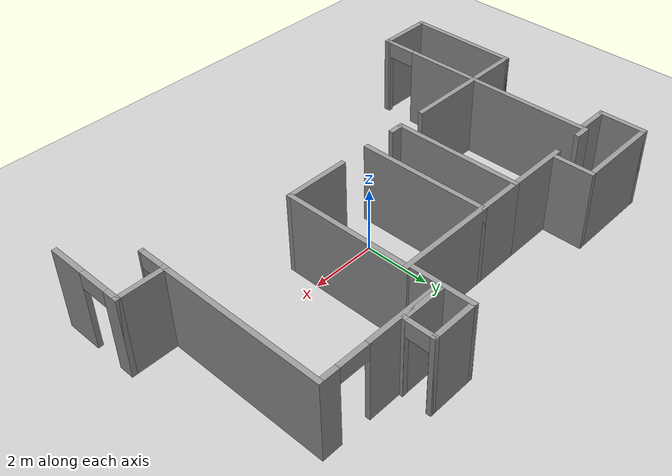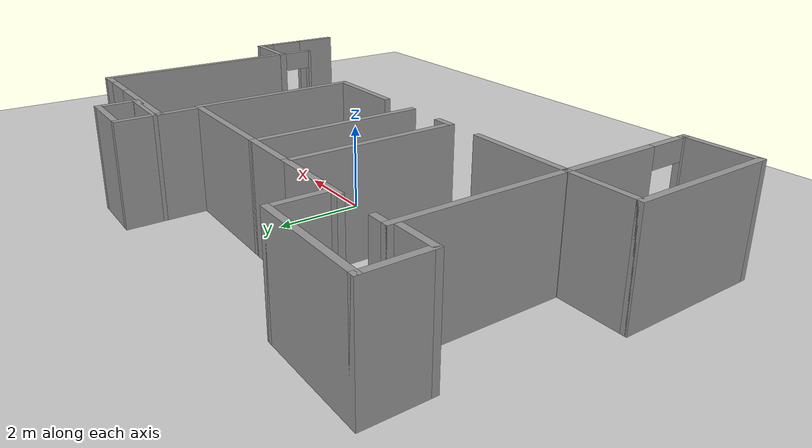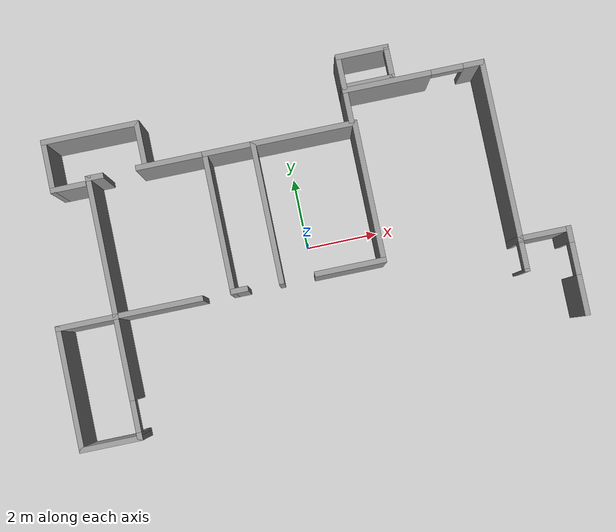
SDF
<sdf version="1.6">
 <world name="default">
  <model name="ground_plane">
   <static>1</static>
   <link name="link">
    <collision name="collision">
     <geometry><plane><normal>0 0 1</normal><size>100 100</size></plane></geometry>
     <surface><friction><ode><mu>100</mu><mu2>50</mu2></ode></friction></surface>
    </collision>
    <visual name="visual">
     <cast_shadows>0</cast_shadows>
     <geometry><plane><normal>0 0 1</normal><size>100 100</size></plane></geometry>
     <material>
      <script><uri>file://media/materials/scripts/gazebo.material</uri><name>Gazebo/Grey</name></script>
     </material>
    </visual>
   </link>
  </model>
  <model name="cma_escritorio">
   <pose>-1.79682 1.02121 0 0 -0 0</pose>
   <link name="Wall_11">
    <collision name="Wall_11_Collision">
     <geometry><box><size>2 0.15 2.5</size></box></geometry>
     <pose>0 0 1.25 0 -0 0</pose>
    </collision>
    <visual name="Wall_11_Visual">
     <pose>0 0 1.25 0 -0 0</pose>
     <geometry><box><size>2 0.15 2.5</size></box></geometry>
     <material>
      <script><uri>file://media/materials/scripts/gazebo.material</uri><name>Gazebo/Grey</name></script>
      <ambient>1 1 1 1</ambient>
     </material>
    </visual>
    <pose>-1.4 1.93 0 0 -0 3.14159</pose>
   </link>
   <link name="Wall_2">
    <collision name="Wall_2_Collision">
     <geometry><box><size>4 0.15 2.5</size></box></geometry>
     <pose>0 0 1.25 0 -0 0</pose>
    </collision>
    <visual name="Wall_2_Visual">
     <pose>0 0 1.25 0 -0 0</pose>
     <geometry><box><size>4 0.15 2.5</size></box></geometry>
     <material>
      <script><uri>file://media/materials/scripts/gazebo.material</uri><name>Gazebo/Grey</name></script>
      <ambient>1 1 1 1</ambient>
     </material>
    </visual>
    <pose>0.875 0.005 0 0 -0 1.5708</pose>
   </link>
   <link name="Wall_25">
    <collision name="Wall_25_Collision">
     <geometry><box><size>2.5 0.15 2.5</size></box></geometry>
     <pose>0 0 1.25 0 -0 0</pose>
    </collision>
    <visual name="Wall_25_Visual">
     <pose>0 0 1.25 0 -0 0</pose>
     <geometry><box><size>2.5 0.15 2.5</size></box></geometry>
     <material>
      <script><uri>file://media/materials/scripts/gazebo.material</uri><name>Gazebo/Grey</name></script>
      <ambient>1 1 1 1</ambient>
     </material>
    </visual>
    <pose>-2.55 -1.93 0 0 -0 3.14159</pose>
   </link>
   <link name="Wall_26">
    <collision name="Wall_26_Collision">
     <geometry><box><size>4 0.15 2.5</size></box></geometry>
     <pose>0 0 1.25 0 -0 0</pose>
    </collision>
    <visual name="Wall_26_Visual">
     <pose>0 0 1.25 0 -0 0</pose>
     <geometry><box><size>4 0.15 2.5</size></box></geometry>
     <material>
      <script><uri>file://media/materials/scripts/gazebo.material</uri><name>Gazebo/Grey</name></script>
      <ambient>1 1 1 1</ambient>
     </material>
    </visual>
    <pose>-3.725 -0.005 0 0 -0 1.5708</pose>
   </link>
   <link name="Wall_27">
    <collision name="Wall_27_Collision">
     <geometry><box><size>0.5 0.15 2.5</size></box></geometry>
     <pose>0 0 1.25 0 -0 0</pose>
    </collision>
    <visual name="Wall_27_Visual">
     <pose>0 0 1.25 0 -0 0</pose>
     <geometry><box><size>0.5 0.15 2.5</size></box></geometry>
     <material>
      <script><uri>file://media/materials/scripts/gazebo.material</uri><name>Gazebo/Grey</name></script>
      <ambient>1 1 1 1</ambient>
     </material>
    </visual>
    <pose>-3.55 1.92 0 0 -0 0</pose>
   </link>
   <link name="Wall_3">
    <collision name="Wall_3_Collision">
     <geometry><box><size>3 0.15 2.5</size></box></geometry>
     <pose>0 0 1.25 0 -0 0</pose>
    </collision>
    <visual name="Wall_3_Visual">
     <pose>0 0 1.25 0 -0 0</pose>
     <geometry><box><size>3 0.15 2.5</size></box></geometry>
     <material>
      <script><uri>file://media/materials/scripts/gazebo.material</uri><name>Gazebo/Grey</name></script>
      <ambient>1 1 1 1</ambient>
     </material>
    </visual>
    <pose>2.3 1.93 0 0 -0 0</pose>
   </link>
   <link name="Wall_4">
    <collision name="Wall_4_Collision">
     <geometry><box><size>4 0.15 2.5</size></box></geometry>
     <pose>0 0 1.25 0 -0 0</pose>
    </collision>
    <visual name="Wall_4_Visual">
     <pose>0 0 1.25 0 -0 0</pose>
     <geometry><box><size>4 0.15 2.5</size></box></geometry>
     <material>
      <script><uri>file://media/materials/scripts/gazebo.material</uri><name>Gazebo/Grey</name></script>
      <ambient>1 1 1 1</ambient>
     </material>
    </visual>
    <pose>3.725 0.005 0 0 0 -1.5708</pose>
   </link>
   <link name="Wall_5">
    <collision name="Wall_5_Collision">
     <geometry><box><size>2 0.15 2.5</size></box></geometry>
     <pose>0 0 1.25 0 -0 0</pose>
    </collision>
    <visual name="Wall_5_Visual">
     <pose>0 0 1.25 0 -0 0</pose>
     <geometry><box><size>2 0.15 2.5</size></box></geometry>
     <material>
      <script><uri>file://media/materials/scripts/gazebo.material</uri><name>Gazebo/Grey</name></script>
      <ambient>1 1 1 1</ambient>
     </material>
    </visual>
    <pose>2.8 -1.92 0 0 -0 3.14159</pose>
   </link>
   <link name="Wall_7">
    <collision name="Wall_7_Collision">
     <geometry><box><size>1.5 0.15 2.5</size></box></geometry>
     <pose>0 0 1.25 0 -0 0</pose>
    </collision>
    <visual name="Wall_7_Visual">
     <pose>0 0 1.25 0 -0 0</pose>
     <geometry><box><size>1.5 0.15 2.5</size></box></geometry>
     <material>
      <script><uri>file://media/materials/scripts/gazebo.material</uri><name>Gazebo/Grey</name></script>
      <ambient>1 1 1 1</ambient>
     </material>
    </visual>
    <pose>0.2 1.93 0 0 -0 3.14159</pose>
   </link>
   <link name="Wall_8">
    <collision name="Wall_8_Collision">
     <geometry><box><size>4 0.15 2.5</size></box></geometry>
     <pose>0 0 1.25 0 -0 0</pose>
    </collision>
    <visual name="Wall_8_Visual">
     <pose>0 0 1.25 0 -0 0</pose>
     <geometry><box><size>4 0.15 2.5</size></box></geometry>
     <material>
      <script><uri>file://media/materials/scripts/gazebo.material</uri><name>Gazebo/Grey</name></script>
      <ambient>1 1 1 1</ambient>
     </material>
    </visual>
    <pose>-0.475 0.005 0 0 0 -1.5708</pose>
   </link>
   <link name="Wall_9">
    <collision name="Wall_9_Collision">
     <geometry><box><size>0.5 0.15 2.5</size></box></geometry>
     <pose>0 0 1.25 0 -0 0</pose>
    </collision>
    <visual name="Wall_9_Visual">
     <pose>0 0 1.25 0 -0 0</pose>
     <geometry><box><size>0.5 0.15 2.5</size></box></geometry>
     <material>
      <script><uri>file://media/materials/scripts/gazebo.material</uri><name>Gazebo/Grey</name></script>
      <ambient>1 1 1 1</ambient>
     </material>
    </visual>
    <pose>-0.3 -1.92 0 0 -0 0</pose>
   </link>
   <static>1</static>
  </model>
  <model name="cma_banheiro">
   <pose>-5.22928 3.4871 0 0 -0 0</pose>
   <link name="Wall_0">
    <collision name="Wall_0_Collision">
     <geometry><box><size>1 0.15 2.5</size></box></geometry>
     <pose>0 0 1.25 0 -0 0</pose>
    </collision>
    <visual name="Wall_0_Visual">
     <pose>0 0 1.25 0 -0 0</pose>
     <geometry><box><size>1 0.15 2.5</size></box></geometry>
     <material>
      <script><uri>file://media/materials/scripts/gazebo.material</uri><name>Gazebo/Grey</name></script>
      <ambient>1 1 1 1</ambient>
     </material>
    </visual>
    <pose>-0.875 -0.675 0 0 -0 3.14159</pose>
   </link>
   <link name="Wall_1">
    <collision name="Wall_1_Collision">
     <geometry><box><size>1.5 0.15 2.5</size></box></geometry>
     <pose>0 0 1.25 0 -0 0</pose>
    </collision>
    <visual name="Wall_1_Visual">
     <pose>0 0 1.25 0 -0 0</pose>
     <geometry><box><size>1.5 0.15 2.5</size></box></geometry>
     <material>
      <script><uri>file://media/materials/scripts/gazebo.material</uri><name>Gazebo/Grey</name></script>
      <ambient>1 1 1 1</ambient>
     </material>
    </visual>
    <pose>-1.3 0 0 0 -0 1.5708</pose>
   </link>
   <link name="Wall_2">
    <collision name="Wall_2_Collision">
     <geometry><box><size>2.75 0.15 2.5</size></box></geometry>
     <pose>0 0 1.25 0 -0 0</pose>
    </collision>
    <visual name="Wall_2_Visual">
     <pose>0 0 1.25 0 -0 0</pose>
     <geometry><box><size>2.75 0.15 2.5</size></box></geometry>
     <material>
      <script><uri>file://media/materials/scripts/gazebo.material</uri><name>Gazebo/Grey</name></script>
      <ambient>1 1 1 1</ambient>
     </material>
    </visual>
    <pose>0 0.675 0 0 -0 0</pose>
   </link>
   <link name="Wall_4">
    <collision name="Wall_4_Collision">
     <geometry><box><size>1.25 0.15 2.5</size></box></geometry>
     <pose>0 0 1.25 0 -0 0</pose>
    </collision>
    <visual name="Wall_4_Visual">
     <pose>0 0 1.25 0 -0 0</pose>
     <geometry><box><size>1.25 0.15 2.5</size></box></geometry>
     <material>
      <script><uri>file://media/materials/scripts/gazebo.material</uri><name>Gazebo/Grey</name></script>
      <ambient>1 1 1 1</ambient>
     </material>
    </visual>
    <pose>1.3 0.125 0 0 0 -1.5708</pose>
   </link>
   <static>1</static>
  </model>
  <model name="cma_varanda1">
   <pose>-6.32518 -2.59313 0 0 -0 0</pose>
   <link name="Wall_0">
    <pose>0.8 0 0 0 0 -1.5708</pose>
    <visual name="Wall_0_Visual_0">
     <pose>-0.5525 0 1.25 0 -0 0</pose>
     <geometry><box><size>2.395 0.15 2.5</size></box></geometry>
     <material>
      <script><uri>file://media/materials/scripts/gazebo.material</uri><name>Gazebo/Grey</name></script>
      <ambient>1 1 1 1</ambient>
     </material>
    </visual>
    <collision name="Wall_0_Collision_0">
     <geometry><box><size>2.395 0.15 2.5</size></box></geometry>
     <pose>-0.5525 0 1.25 0 -0 0</pose>
    </collision>
    <visual name="Wall_0_Visual_1">
     <pose>1.6375 0 1.25 0 -0 0</pose>
     <geometry><box><size>0.225 0.15 2.5</size></box></geometry>
     <material>
      <script><uri>file://media/materials/scripts/gazebo.material</uri><name>Gazebo/Grey</name></script>
      <ambient>1 1 1 1</ambient>
     </material>
    </visual>
    <collision name="Wall_0_Collision_1">
     <geometry><box><size>0.225 0.15 2.5</size></box></geometry>
     <pose>1.6375 0 1.25 0 -0 0</pose>
    </collision>
    <visual name="Wall_0_Visual_2">
     <pose>1.085 0 2.25 0 -0 0</pose>
     <geometry><box><size>0.88 0.15 0.5</size></box></geometry>
     <material>
      <script><uri>file://media/materials/scripts/gazebo.material</uri><name>Gazebo/Grey</name></script>
      <ambient>1 1 1 1</ambient>
     </material>
    </visual>
    <collision name="Wall_0_Collision_2">
     <geometry><box><size>0.88 0.15 0.5</size></box></geometry>
     <pose>1.085 0 2.25 0 -0 0</pose>
    </collision>
   </link>
   <link name="Wall_1">
    <collision name="Wall_1_Collision">
     <geometry><box><size>1.75 0.15 2.5</size></box></geometry>
     <pose>0 0 1.25 0 -0 0</pose>
    </collision>
    <visual name="Wall_1_Visual">
     <pose>0 0 1.25 0 -0 0</pose>
     <geometry><box><size>1.75 0.15 2.5</size></box></geometry>
     <material>
      <script><uri>file://media/materials/scripts/gazebo.material</uri><name>Gazebo/Grey</name></script>
      <ambient>1 1 1 1</ambient>
     </material>
    </visual>
    <pose>0 -1.675 0 0 -0 3.14159</pose>
   </link>
   <link name="Wall_2">
    <collision name="Wall_2_Collision">
     <geometry><box><size>3.5 0.15 2.5</size></box></geometry>
     <pose>0 0 1.25 0 -0 0</pose>
    </collision>
    <visual name="Wall_2_Visual">
     <pose>0 0 1.25 0 -0 0</pose>
     <geometry><box><size>3.5 0.15 2.5</size></box></geometry>
     <material>
      <script><uri>file://media/materials/scripts/gazebo.material</uri><name>Gazebo/Grey</name></script>
      <ambient>1 1 1 1</ambient>
     </material>
    </visual>
    <pose>-0.8 0 0 0 -0 1.5708</pose>
   </link>
   <link name="Wall_3">
    <collision name="Wall_3_Collision">
     <geometry><box><size>1.75 0.15 2.5</size></box></geometry>
     <pose>0 0 1.25 0 -0 0</pose>
    </collision>
    <visual name="Wall_3_Visual">
     <pose>0 0 1.25 0 -0 0</pose>
     <geometry><box><size>1.75 0.15 2.5</size></box></geometry>
     <material>
      <script><uri>file://media/materials/scripts/gazebo.material</uri><name>Gazebo/Grey</name></script>
      <ambient>1 1 1 1</ambient>
     </material>
    </visual>
    <pose>0 1.675 0 0 -0 0</pose>
   </link>
   <static>1</static>
  </model>
  <model name="cma_L3">
   <pose>6.37221 -2.26022 0 0 -0 0</pose>
   <link name="Wall_12">
    <pose>-0.675 0.75 0 0 -0 1.5708</pose>
    <visual name="Wall_12_Visual_0">
     <pose>-0.46 0 1.25 0 -0 0</pose>
     <geometry><box><size>0.08 0.15 2.5</size></box></geometry>
     <material>
      <script><uri>file://media/materials/scripts/gazebo.material</uri><name>Gazebo/Grey</name></script>
      <ambient>1 1 1 1</ambient>
     </material>
    </visual>
    <collision name="Wall_12_Collision_0">
     <geometry><box><size>0.08 0.15 2.5</size></box></geometry>
     <pose>-0.46 0 1.25 0 -0 0</pose>
    </collision>
    <visual name="Wall_12_Visual_1">
     <pose>0.405 0 1.25 0 -0 0</pose>
     <geometry><box><size>0.19 0.15 2.5</size></box></geometry>
     <material>
      <script><uri>file://media/materials/scripts/gazebo.material</uri><name>Gazebo/Grey</name></script>
      <ambient>1 1 1 1</ambient>
     </material>
    </visual>
    <collision name="Wall_12_Collision_1">
     <geometry><box><size>0.19 0.15 2.5</size></box></geometry>
     <pose>0.405 0 1.25 0 -0 0</pose>
    </collision>
    <visual name="Wall_12_Visual_2">
     <pose>-0.055 0 2.25 0 -0 0</pose>
     <geometry><box><size>0.73 0.15 0.5</size></box></geometry>
     <material>
      <script><uri>file://media/materials/scripts/gazebo.material</uri><name>Gazebo/Grey</name></script>
      <ambient>1 1 1 1</ambient>
     </material>
    </visual>
    <collision name="Wall_12_Collision_2">
     <geometry><box><size>0.73 0.15 0.5</size></box></geometry>
     <pose>-0.055 0 2.25 0 -0 0</pose>
    </collision>
   </link>
   <link name="Wall_13">
    <collision name="Wall_13_Collision">
     <geometry><box><size>1.5 0.15 2.5</size></box></geometry>
     <pose>0 0 1.25 0 -0 0</pose>
    </collision>
    <visual name="Wall_13_Visual">
     <pose>0 0 1.25 0 -0 0</pose>
     <geometry><box><size>1.5 0.15 2.5</size></box></geometry>
     <material>
      <script><uri>file://media/materials/scripts/gazebo.material</uri><name>Gazebo/Grey</name></script>
      <ambient>1 1 1 1</ambient>
     </material>
    </visual>
    <pose>0 1.175 0 0 -0 0</pose>
   </link>
   <link name="Wall_14">
    <pose>0.675 0 0 0 0 -1.5708</pose>
    <visual name="Wall_14_Visual_0">
     <pose>-1.0175 0 1.25 0 -0 0</pose>
     <geometry><box><size>0.465 0.15 2.5</size></box></geometry>
     <material>
      <script><uri>file://media/materials/scripts/gazebo.material</uri><name>Gazebo/Grey</name></script>
      <ambient>1 1 1 1</ambient>
     </material>
    </visual>
    <collision name="Wall_14_Collision_0">
     <geometry><box><size>0.465 0.15 2.5</size></box></geometry>
     <pose>-1.0175 0 1.25 0 -0 0</pose>
    </collision>
    <visual name="Wall_14_Visual_1">
     <pose>0.6825 0 1.25 0 -0 0</pose>
     <geometry><box><size>1.135 0.15 2.5</size></box></geometry>
     <material>
      <script><uri>file://media/materials/scripts/gazebo.material</uri><name>Gazebo/Grey</name></script>
      <ambient>1 1 1 1</ambient>
     </material>
    </visual>
    <collision name="Wall_14_Collision_1">
     <geometry><box><size>1.135 0.15 2.5</size></box></geometry>
     <pose>0.6825 0 1.25 0 -0 0</pose>
    </collision>
    <visual name="Wall_14_Visual_2">
     <pose>-0.335 0 2.25 0 -0 0</pose>
     <geometry><box><size>0.9 0.15 0.5</size></box></geometry>
     <material>
      <script><uri>file://media/materials/scripts/gazebo.material</uri><name>Gazebo/Grey</name></script>
      <ambient>1 1 1 1</ambient>
     </material>
    </visual>
    <collision name="Wall_14_Collision_2">
     <geometry><box><size>0.9 0.15 0.5</size></box></geometry>
     <pose>-0.335 0 2.25 0 -0 0</pose>
    </collision>
   </link>
   <static>1</static>
  </model>
  <model name="cma_L5">
   <pose>3.77502 1.45512 0 0 -0 0</pose>
   <link name="Wall_0">
    <collision name="Wall_0_Collision">
     <geometry><box><size>1 0.15 2.5</size></box></geometry>
     <pose>0 0 1.25 0 -0 0</pose>
    </collision>
    <visual name="Wall_0_Visual">
     <pose>0 0 1.25 0 -0 0</pose>
     <geometry><box><size>1 0.15 2.5</size></box></geometry>
     <material>
      <script><uri>file://media/materials/scripts/gazebo.material</uri><name>Gazebo/Grey</name></script>
      <ambient>1 1 1 1</ambient>
     </material>
    </visual>
    <pose>-1.925 2 0 0 -0 1.5708</pose>
   </link>
   <link name="Wall_1">
    <pose>0 2.425 0 0 -0 0</pose>
    <visual name="Wall_1_Visual_0">
     <pose>-0.7525 0 1.25 0 -0 0</pose>
     <geometry><box><size>2.495 0.15 2.5</size></box></geometry>
     <material>
      <script><uri>file://media/materials/scripts/gazebo.material</uri><name>Gazebo/Grey</name></script>
      <ambient>1 1 1 1</ambient>
     </material>
    </visual>
    <collision name="Wall_1_Collision_0">
     <geometry><box><size>2.495 0.15 2.5</size></box></geometry>
     <pose>-0.7525 0 1.25 0 -0 0</pose>
    </collision>
    <visual name="Wall_1_Visual_1">
     <pose>1.6975 0 1.25 0 -0 0</pose>
     <geometry><box><size>0.605 0.15 2.5</size></box></geometry>
     <material>
      <script><uri>file://media/materials/scripts/gazebo.material</uri><name>Gazebo/Grey</name></script>
      <ambient>1 1 1 1</ambient>
     </material>
    </visual>
    <collision name="Wall_1_Collision_1">
     <geometry><box><size>0.605 0.15 2.5</size></box></geometry>
     <pose>1.6975 0 1.25 0 -0 0</pose>
    </collision>
    <visual name="Wall_1_Visual_2">
     <pose>0.945 0 2.25 0 -0 0</pose>
     <geometry><box><size>0.9 0.15 0.5</size></box></geometry>
     <material>
      <script><uri>file://media/materials/scripts/gazebo.material</uri><name>Gazebo/Grey</name></script>
      <ambient>1 1 1 1</ambient>
     </material>
    </visual>
    <collision name="Wall_1_Collision_2">
     <geometry><box><size>0.9 0.15 0.5</size></box></geometry>
     <pose>0.945 0 2.25 0 -0 0</pose>
    </collision>
   </link>
   <link name="Wall_3">
    <collision name="Wall_3_Collision">
     <geometry><box><size>5 0.15 2.5</size></box></geometry>
     <pose>0 0 1.25 0 -0 0</pose>
    </collision>
    <visual name="Wall_3_Visual">
     <pose>0 0 1.25 0 -0 0</pose>
     <geometry><box><size>5 0.15 2.5</size></box></geometry>
     <material>
      <script><uri>file://media/materials/scripts/gazebo.material</uri><name>Gazebo/Grey</name></script>
      <ambient>1 1 1 1</ambient>
     </material>
    </visual>
    <pose>1.925 0 0 0 0 -1.5708</pose>
   </link>
   <static>1</static>
  </model>
  <model name="cma_dispensa">
   <pose>2.52584 4.40119 0 0 -0 0</pose>
   <link name="Wall_5">
    <collision name="Wall_5_Collision">
     <geometry><box><size>1 0.15 2.5</size></box></geometry>
     <pose>0 0 1.25 0 -0 0</pose>
    </collision>
    <visual name="Wall_5_Visual">
     <pose>0 0 1.25 0 -0 0</pose>
     <geometry><box><size>1 0.15 2.5</size></box></geometry>
     <material>
      <script><uri>file://media/materials/scripts/gazebo.material</uri><name>Gazebo/Grey</name></script>
      <ambient>1 1 1 1</ambient>
     </material>
    </visual>
    <pose>-0.675 0 0 0 -0 1.5708</pose>
   </link>
   <link name="Wall_6">
    <collision name="Wall_6_Collision">
     <geometry><box><size>1.5 0.15 2.5</size></box></geometry>
     <pose>0 0 1.25 0 -0 0</pose>
    </collision>
    <visual name="Wall_6_Visual">
     <pose>0 0 1.25 0 -0 0</pose>
     <geometry><box><size>1.5 0.15 2.5</size></box></geometry>
     <material>
      <script><uri>file://media/materials/scripts/gazebo.material</uri><name>Gazebo/Grey</name></script>
      <ambient>1 1 1 1</ambient>
     </material>
    </visual>
    <pose>0 0.425 0 0 -0 0</pose>
   </link>
   <link name="Wall_7">
    <pose>0.675 0 0 0 0 -1.5708</pose>
    <visual name="Wall_7_Visual_0">
     <pose>-0.4275 0 1.25 0 -0 0</pose>
     <geometry><box><size>0.145 0.15 2.5</size></box></geometry>
     <material>
      <script><uri>file://media/materials/scripts/gazebo.material</uri><name>Gazebo/Grey</name></script>
      <ambient>1 1 1 1</ambient>
     </material>
    </visual>
    <collision name="Wall_7_Collision_0">
     <geometry><box><size>0.145 0.15 2.5</size></box></geometry>
     <pose>-0.4275 0 1.25 0 -0 0</pose>
    </collision>
    <visual name="Wall_7_Visual_1">
     <pose>0.4225 0 1.25 0 -0 0</pose>
     <geometry><box><size>0.155 0.15 2.5</size></box></geometry>
     <material>
      <script><uri>file://media/materials/scripts/gazebo.material</uri><name>Gazebo/Grey</name></script>
      <ambient>1 1 1 1</ambient>
     </material>
    </visual>
    <collision name="Wall_7_Collision_1">
     <geometry><box><size>0.155 0.15 2.5</size></box></geometry>
     <pose>0.4225 0 1.25 0 -0 0</pose>
    </collision>
    <visual name="Wall_7_Visual_2">
     <pose>-0.005 0 2.25 0 -0 0</pose>
     <geometry><box><size>0.7 0.15 0.5</size></box></geometry>
     <material>
      <script><uri>file://media/materials/scripts/gazebo.material</uri><name>Gazebo/Grey</name></script>
      <ambient>1 1 1 1</ambient>
     </material>
    </visual>
    <collision name="Wall_7_Collision_2">
     <geometry><box><size>0.7 0.15 0.5</size></box></geometry>
     <pose>-0.005 0 2.25 0 -0 0</pose>
    </collision>
   </link>
   <link name="Wall_8">
    <collision name="Wall_8_Collision">
     <geometry><box><size>1.5 0.15 2.5</size></box></geometry>
     <pose>0 0 1.25 0 -0 0</pose>
    </collision>
    <visual name="Wall_8_Visual">
     <pose>0 0 1.25 0 -0 0</pose>
     <geometry><box><size>1.5 0.15 2.5</size></box></geometry>
     <material>
      <script><uri>file://media/materials/scripts/gazebo.material</uri><name>Gazebo/Grey</name></script>
      <ambient>1 1 1 1</ambient>
     </material>
    </visual>
    <pose>0 -0.425 0 0 -0 3.14159</pose>
   </link>
   <static>1</static>
  </model>
 </world>
</sdf>
